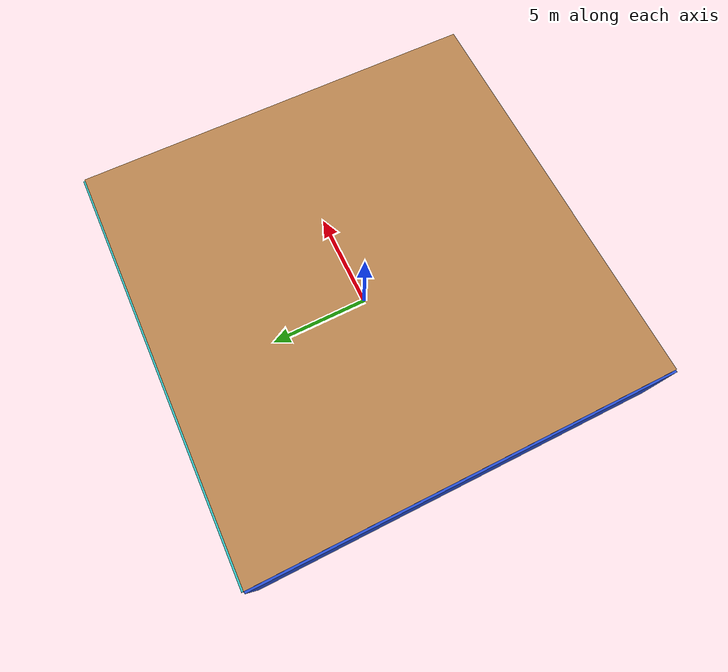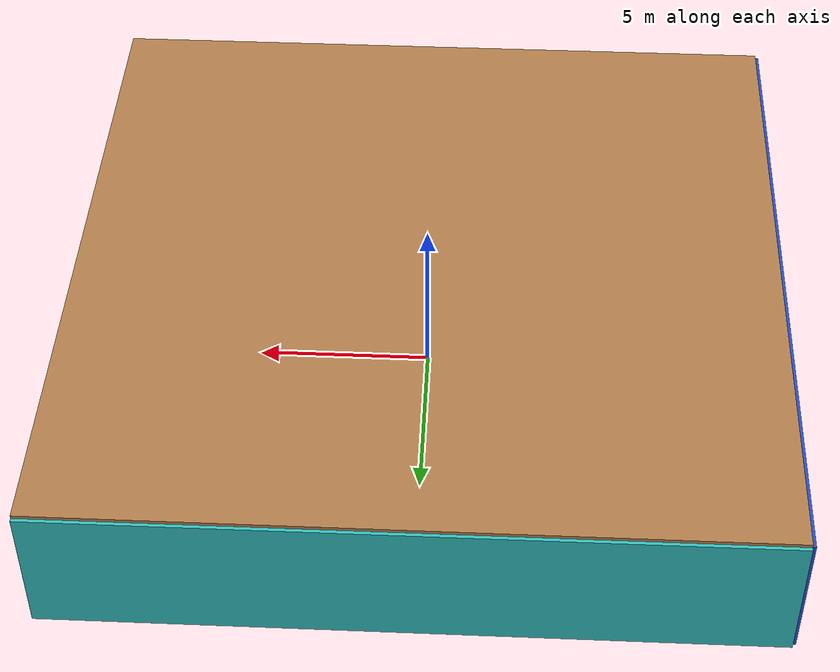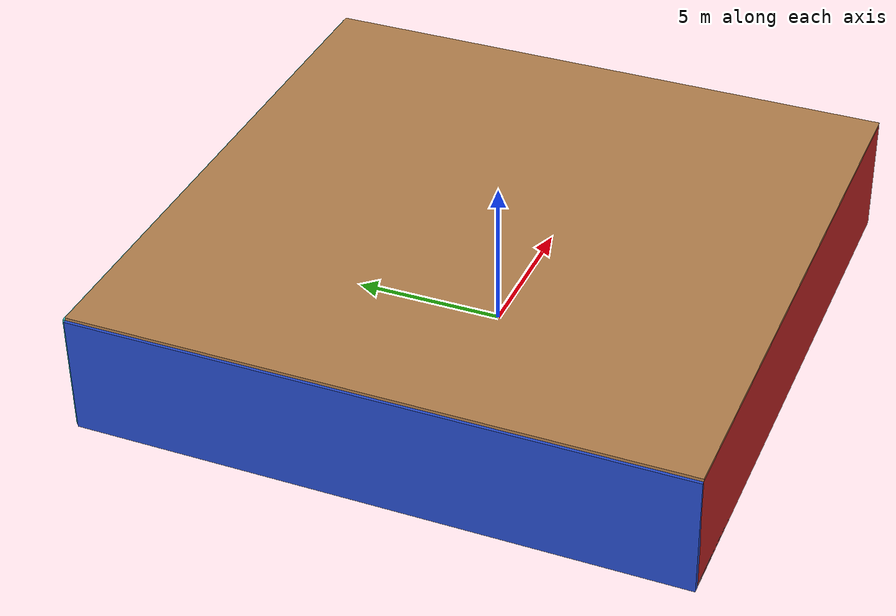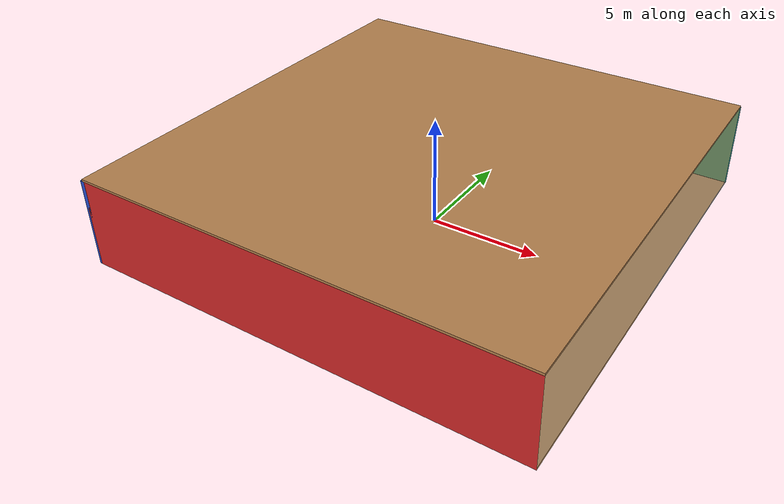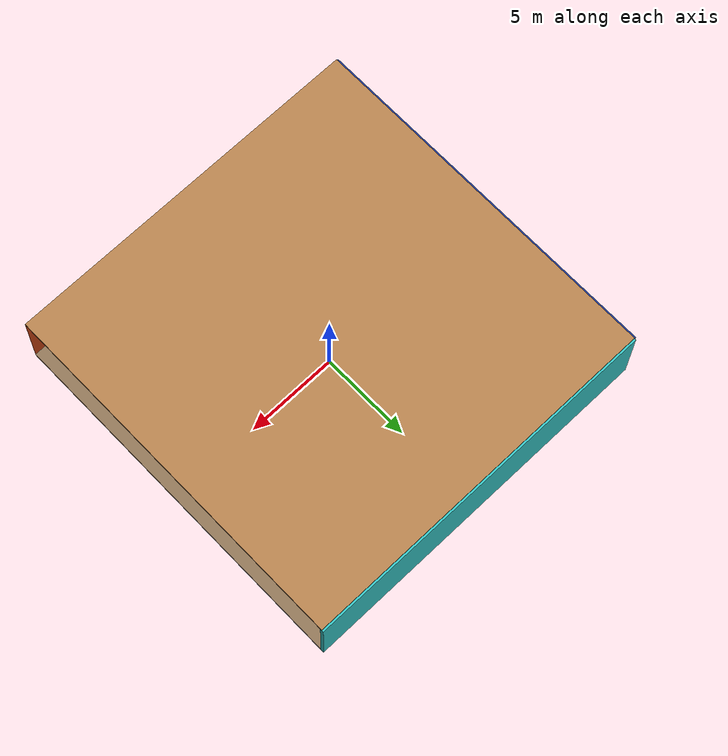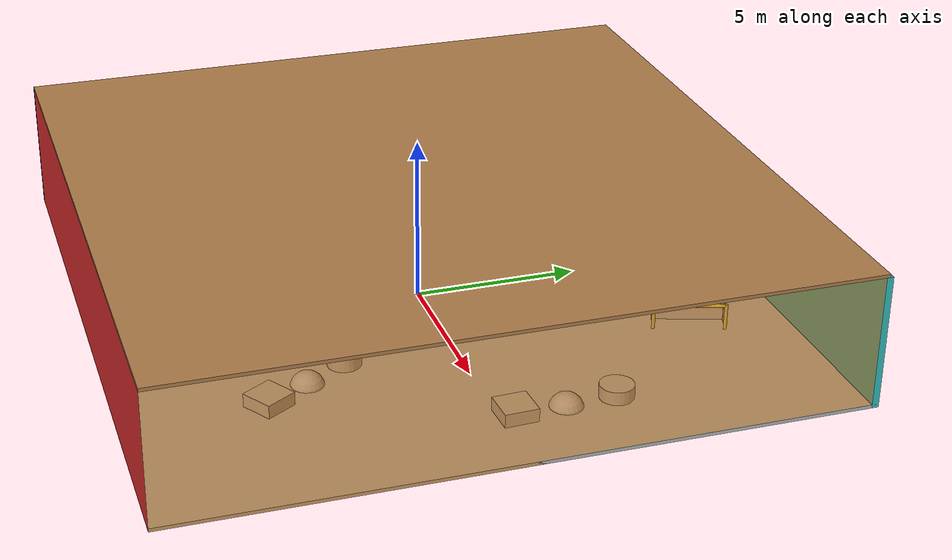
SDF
<sdf version="1.4">
 <world name="default">
  <physics type="ode">
   <max_step_size>0.001</max_step_size>
   <real_time_factor>1</real_time_factor>
   <real_time_update_rate>1000</real_time_update_rate>
   <gravity>0 0 -9.8</gravity>
  </physics>
  <scene><ambient>0.4 0.4 0.4 1</ambient><background>0.7 0.7 0.7 1</background><shadows>1</shadows></scene>
  <model name="Surrounding">
   <static>1</static>
   <link name="Ceiling">
    <collision name="Ceiling_Collision"><geometry><box><size>20 20 0.1</size></box></geometry></collision>
    <visual name="Ceiling_Visual">
     <geometry><box><size>20 20 0.1</size></box></geometry>
     <material>
      <script><uri>file://media/materials/scripts/gazebo.material</uri><name>Gazebo/WoodPallet</name></script>
     </material>
    </visual>
    <pose>0 0 4.05 0 0 0</pose>
   </link>
   <link name="Wall_South">
    <collision name="Wall_South_Collision">
     <geometry><box><size>20 0 4</size></box></geometry>
     <pose>0 0 2 0 -0 0</pose>
    </collision>
    <visual name="Wall_South_Visual">
     <pose>0 0 2 0 -0 0</pose>
     <geometry><box><size>20 0 4</size></box></geometry>
     <material>
      <script><uri>file://media/materials/scripts/gazebo.material</uri><name>Gazebo/RedBright</name></script>
     </material>
    </visual>
    <velocity_decay><linear>0</linear><angular>0</angular></velocity_decay>
    <pose>0 -10 0 0 -0 0</pose>
   </link>
   <link name="Wall_East">
    <collision name="Wall_21_Collision">
     <geometry><box><size>20 0 4</size></box></geometry>
     <pose>0 0 2 0 -0 0</pose>
    </collision>
    <visual name="Wall_21_Visual">
     <pose>0 0 2 0 -0 0</pose>
     <geometry><box><size>20 0 4</size></box></geometry>
     <material>
      <script>
       <uri>file://media/materials/scripts/gazebo.material</uri>
       <name>Gazebo/OrangeTransparent</name>
      </script>
     </material>
    </visual>
    <velocity_decay><linear>0</linear><angular>0</angular></velocity_decay>
    <pose>10 0 0 0 -0 1.5708</pose>
   </link>
   <link name="Wall_North">
    <collision name="Wall_22_Collision">
     <geometry><box><size>20 0.2 4</size></box></geometry>
     <pose>0 0 2 0 -0 0</pose>
    </collision>
    <visual name="Wall_22_Visual">
     <pose>0 0 2 0 -0 0</pose>
     <geometry><box><size>20 0.2 4</size></box></geometry>
     <material>
      <script><uri>file://media/materials/scripts/gazebo.material</uri><name>Gazebo/TurquoiseGlow</name></script>
     </material>
    </visual>
    <velocity_decay><linear>0</linear><angular>0</angular></velocity_decay>
    <pose>0 10 0 0 -0 0</pose>
   </link>
   <link name="Wall_West">
    <collision name="Wall_23_Collision">
     <geometry><box><size>20 0.2 4</size></box></geometry>
     <pose>0 0 2 0 -0 0</pose>
    </collision>
    <visual name="Wall_23_Visual">
     <pose>0 0 2 0 -0 0</pose>
     <geometry><box><size>20 0.2 4</size></box></geometry>
     <material>
      <script><uri>file://media/materials/scripts/gazebo.material</uri><name>Gazebo/Blue</name></script>
     </material>
    </visual>
    <velocity_decay><linear>0</linear><angular>0</angular></velocity_decay>
    <pose>-10 0 0 0 0 -1.5708</pose>
   </link>
   <link name="Ground_link">
    <collision name="collision">
     <pose>0 0 .05 0 -0 0</pose>
     <geometry><box><size>20 20 0.1</size></box></geometry>
    </collision>
    <visual name="visual">
     <pose>0 0 .05 0 -0 0</pose>
     <geometry><box><size>20 20 0.1</size></box></geometry>
     <material>
      <script><uri>file://media/materials/scripts/gazebo.material</uri><name>Gazebo/JointAnchor</name></script>
     </material>
    </visual>
   </link>
   <static>1</static>
  </model>
  <spherical_coordinates>
   <surface_model>EARTH_WGS84</surface_model>
   <latitude_deg>0</latitude_deg>
   <longitude_deg>0</longitude_deg>
   <elevation>0</elevation>
   <heading_deg>0</heading_deg>
  </spherical_coordinates>
  <light name="lightball_0" type="diffuse">
   <diffuse>0.8 0.8 0.8 1</diffuse>
   <specular>0.2 0.2 0.2 1</specular>
   <attenuation>
    <range>100</range>
    <constant>0.7</constant>
    <linear>0.01</linear>
    <quadratic>0.001</quadratic>
   </attenuation>
   <direction>-0.5 0.1 -0.9</direction>
   <pose>1.98672306537 -4.59969249234 2.91218750274 0 0 0</pose>
  </light>
  <light name="lightball_1" type="diffuse">
   <diffuse>0.8 0.8 0.8 1</diffuse>
   <specular>0.2 0.2 0.2 1</specular>
   <attenuation>
    <range>100</range>
    <constant>0.7</constant>
    <linear>0.01</linear>
    <quadratic>0.001</quadratic>
   </attenuation>
   <direction>-0.5 0.1 -0.9</direction>
   <pose>1.17638211619 8.2747635593 1.55421819625 0 0 0</pose>
  </light>
  <light name="lightball_2" type="diffuse">
   <diffuse>0.8 0.8 0.8 1</diffuse>
   <specular>0.2 0.2 0.2 1</specular>
   <attenuation>
    <range>100</range>
    <constant>0.7</constant>
    <linear>0.01</linear>
    <quadratic>0.001</quadratic>
   </attenuation>
   <direction>-0.5 0.1 -0.9</direction>
   <pose>8.68612035454 4.55062354553 1.42721497629 0 0 0</pose>
  </light>
  <light name="lightball_3" type="diffuse">
   <diffuse>0.8 0.8 0.8 1</diffuse>
   <specular>0.2 0.2 0.2 1</specular>
   <attenuation>
    <range>100</range>
    <constant>0.7</constant>
    <linear>0.01</linear>
    <quadratic>0.001</quadratic>
   </attenuation>
   <direction>-0.5 0.1 -0.9</direction>
   <pose>3.91777496229 -1.13606026208 1.53827926424 0 0 0</pose>
  </light>
  <light name="lightball_4" type="diffuse">
   <diffuse>0.8 0.8 0.8 1</diffuse>
   <specular>0.2 0.2 0.2 1</specular>
   <attenuation>
    <range>100</range>
    <constant>0.7</constant>
    <linear>0.01</linear>
    <quadratic>0.001</quadratic>
   </attenuation>
   <direction>-0.5 0.1 -0.9</direction>
   <pose>1.56902780016 -5.81654971903 0.798111193712 0 0 0</pose>
  </light>
  <light name="lightball_5" type="diffuse">
   <diffuse>0.8 0.8 0.8 1</diffuse>
   <specular>0.2 0.2 0.2 1</specular>
   <attenuation>
    <range>100</range>
    <constant>0.7</constant>
    <linear>0.01</linear>
    <quadratic>0.001</quadratic>
   </attenuation>
   <direction>-0.5 0.1 -0.9</direction>
   <pose>-9.94200383941 8.32546654819 0.710471607143 0 0 0</pose>
  </light>
  <light name="lightball_6" type="diffuse">
   <diffuse>0.8 0.8 0.8 1</diffuse>
   <specular>0.2 0.2 0.2 1</specular>
   <attenuation>
    <range>100</range>
    <constant>0.7</constant>
    <linear>0.01</linear>
    <quadratic>0.001</quadratic>
   </attenuation>
   <direction>-0.5 0.1 -0.9</direction>
   <pose>5.07432742051 6.52827583312 1.76105121012 0 0 0</pose>
  </light>
  <light name="lightball_7" type="diffuse">
   <diffuse>0.8 0.8 0.8 1</diffuse>
   <specular>0.2 0.2 0.2 1</specular>
   <attenuation>
    <range>100</range>
    <constant>0.7</constant>
    <linear>0.01</linear>
    <quadratic>0.001</quadratic>
   </attenuation>
   <direction>-0.5 0.1 -0.9</direction>
   <pose>-3.88525624856 3.03704577085 2.22488560086 0 0 0</pose>
  </light>
  <include><uri>model://cabinet</uri><pose>-7.57276128871 1.57999842067 0 0 0 2.89867386082</pose></include>
  <include><uri>model://cabinet</uri><pose>-3.88099498132 -3.82107355549 0 0 0 0.160797870604</pose></include>
  <include><uri>model://table</uri><pose>-1.61401788896 -7.93708945448 0 0 0 1.01856313065</pose></include>
  <include><uri>model://cabinet</uri><pose>0.857495692396 -7.572522523 0 0 0 2.06266865061</pose></include>
  <include>
   <uri>model://textured_shapes</uri>
   <pose>4.40451337716 -4.55946406239 0 0 0 0.55748909103</pose>
  </include>
  <include>
   <uri>model://robocup_3Dsim_goal</uri>
   <pose>4.56696276559 6.89938383587 0 0 0 2.82056400898</pose>
  </include>
  <include>
   <uri>model://textured_shapes</uri>
   <pose>7.59431497047 1.9053315685 0 0 0 0.0447779277748</pose>
  </include>
 </world>
</sdf>

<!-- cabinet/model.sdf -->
<sdf version="1.5">
  <model name="cabinet">
    <static>true</static>
    <link name="cabinet_bottom_plate">
      <inertial>
        <pose>0 0 -1 0 0 0</pose>
        <inertia>
          <ixx>2.050000</ixx>
          <ixy>0</ixy>
          <ixz>0</ixz>
          <iyy>2.050000</iyy>
          <iyz>0</iyz>
          <izz>2.050000</izz>
        </inertia>
        <mass>25.000000</mass>
      </inertial>
      <collision name="cabinet_bottom_plate_geom">
        <pose>0 0 0.010000 0 0 0</pose>
        <geometry>
          <box>
            <size>0.450000 0.450000 0.020000</size>
          </box>
        </geometry>
      </collision>
      <visual name="cabinet_bottom_plate_geom_visual">
        <pose>0 0 0.010000 0 0 0</pose>
        <geometry>
          <box>
            <size>0.450000 0.450000 0.020000</size>
          </box>
        </geometry>
        <material>
          <script>
            <uri>model://media/materials/scripts/gazebo.material</uri>
            <name>Gazebo/Wood</name>
          </script>
        </material>
      </visual>
      <collision name="cabinet_bottom_plate_geom_cabinet_back_plate">
        <pose>0.235000 0 0.510000 0 0 0</pose>
        <geometry>
          <box>
            <size>0.020000 0.450000 1.020000</size>
          </box>
        </geometry>
      </collision>
      <visual name="cabinet_bottom_plate_geom_cabinet_back_plate_visual">
        <pose>0.235000 0 0.510000 0 0 0</pose>
        <geometry>
          <box>
            <size>0.020000 0.450000 1.020000</size>
          </box>
        </geometry>
        <material>
          <script>
            <uri>model://media/materials/scripts/gazebo.material</uri>
            <name>Gazebo/Wood</name>
          </script>
        </material>
      </visual>
      <collision name="cabinet_bottom_plate_geom_cabinet_left_plate">
        <pose>0 0.235000 0.510000 0 0 0</pose>
        <geometry>
          <box>
            <size>0.450000 0.020000 1.020000</size>
          </box>
        </geometry>
      </collision>
      <visual name="cabinet_bottom_plate_geom_cabinet_left_plate_visual">
        <pose>0 0.235000 0.510000 0 0 0</pose>
        <geometry>
          <box>
            <size>0.450000 0.020000 1.020000</size>
          </box>
        </geometry>
        <material>
          <script>
            <uri>model://media/materials/scripts/gazebo.material</uri>
            <name>Gazebo/Wood</name>
          </script>
        </material>
      </visual>
      <collision name="cabinet_bottom_plate_geom_cabinet_middle_plate">
        <pose>0 0 0.510000 0 0 0</pose>
        <geometry>
          <box>
            <size>0.450000 0.450000 0.020000</size>
          </box>
        </geometry>
      </collision>
      <visual name="cabinet_bottom_plate_geom_cabinet_middle_plate_visual">
        <pose>0 0 0.510000 0 0 0</pose>
        <geometry>
          <box>
            <size>0.450000 0.450000 0.020000</size>
          </box>
        </geometry>
        <material>
          <script>
            <uri>model://media/materials/scripts/gazebo.material</uri>
            <name>Gazebo/Wood</name>
          </script>
        </material>
      </visual>
      <collision name="cabinet_bottom_plate_geom_cabinet_right_plate">
        <pose>0 -0.235000 0.510000 0 0 0</pose>
        <geometry>
          <box>
            <size>0.450000 0.020000 1.020000</size>
          </box>
        </geometry>
      </collision>
      <visual name="cabinet_bottom_plate_geom_cabinet_right_plate_visual">
        <pose>0 -0.235000 0.510000 0 0 0</pose>
        <geometry>
          <box>
            <size>0.450000 0.020000 1.020000</size>
          </box>
        </geometry>
        <material>
          <script>
            <uri>model://media/materials/scripts/gazebo.material</uri>
            <name>Gazebo/Wood</name>
          </script>
        </material>
      </visual>
      <collision name="cabinet_bottom_plate_geom_cabinet_top_plate">
        <pose>0 0 1.010000 0 0 0</pose>
        <geometry>
          <box>
            <size>0.450000 0.450000 0.020000</size>
          </box>
        </geometry>
      </collision>
      <visual name="cabinet_bottom_plate_geom_cabinet_top_plate_visual">
        <pose>0 0 1.010000 0 0 0</pose>
        <geometry>
          <box>
            <size>0.450000 0.450000 0.020000</size>
          </box>
        </geometry>
        <material>
          <script>
            <uri>model://media/materials/scripts/gazebo.material</uri>
            <name>Gazebo/Wood</name>
          </script>
        </material>
      </visual>
    </link>
  </model>
</sdf>

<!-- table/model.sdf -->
<sdf version="1.5">
  <model name="table">
    <static>true</static>
    <link name="link">
      <collision name="surface">
        <pose>0 0 1.0 0 0 0</pose>
        <geometry>
          <box>
            <size>1.5 0.8 0.03</size>
          </box>
        </geometry>
        <surface>
          <friction>
            <ode>
              <mu>0.6</mu>
              <mu2>0.6</mu2>
            </ode>
          </friction>
        </surface>
      </collision>
      <visual name="visual1">
        <pose>0 0 1.0 0 0 0</pose>
        <geometry>
          <box>
            <size>1.5 0.8 0.03</size>
          </box>
        </geometry>
        <material>
          <script>
            <uri>model://media/materials/scripts/gazebo.material</uri>
            <name>Gazebo/Wood</name>
          </script>
        </material>
      </visual>
      <collision name="front_left_leg">
        <pose>0.68 0.38 0.5 0 0 0</pose>
        <geometry>
          <cylinder>
            <radius>0.02</radius>
            <length>1.0</length>
          </cylinder>
        </geometry>
      </collision>
      <visual name="front_left_leg">
        <pose>0.68 0.38 0.5 0 0 0</pose>
        <geometry>
          <cylinder>
            <radius>0.02</radius>
            <length>1.0</length>
          </cylinder>
        </geometry>
        <material>
          <script>
            <uri>model://media/materials/scripts/gazebo.material</uri>
            <name>Gazebo/Grey</name>
          </script>
        </material>
      </visual>
      <collision name="front_right_leg">
        <pose>0.68 -0.38 0.5 0 0 0</pose>
        <geometry>
          <cylinder>
            <radius>0.02</radius>
            <length>1.0</length>
          </cylinder>
        </geometry>
      </collision>
      <visual name="front_right_leg">
        <pose>0.68 -0.38 0.5 0 0 0</pose>
        <geometry>
          <cylinder>
            <radius>0.02</radius>
            <length>1.0</length>
          </cylinder>
        </geometry>
        <material>
          <script>
            <uri>model://media/materials/scripts/gazebo.material</uri>
            <name>Gazebo/Grey</name>
          </script>
        </material>
      </visual>
      <collision name="back_right_leg">
        <pose>-0.68 -0.38 0.5 0 0 0</pose>
        <geometry>
          <cylinder>
            <radius>0.02</radius>
            <length>1.0</length>
          </cylinder>
        </geometry>
      </collision>
      <visual name="back_right_leg">
        <pose>-0.68 -0.38 0.5 0 0 0</pose>
        <geometry>
          <cylinder>
            <radius>0.02</radius>
            <length>1.0</length>
          </cylinder>
        </geometry>
        <material>
          <script>
            <uri>model://media/materials/scripts/gazebo.material</uri>
            <name>Gazebo/Grey</name>
          </script>
        </material>
      </visual>
      <collision name="back_left_leg">
        <pose>-0.68 0.38 0.5 0 0 0</pose>
        <geometry>
          <cylinder>
            <radius>0.02</radius>
            <length>1.0</length>
          </cylinder>
        </geometry>
      </collision>
      <visual name="back_left_leg">
        <pose>-0.68 0.38 0.5 0 0 0</pose>
        <geometry>
          <cylinder>
            <radius>0.02</radius>
            <length>1.0</length>
          </cylinder>
        </geometry>
        <material>
          <script>
            <uri>model://media/materials/scripts/gazebo.material</uri>
            <name>Gazebo/Grey</name>
          </script>
        </material>
      </visual>
    </link>
  </model>
</sdf>

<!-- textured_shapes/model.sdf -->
<sdf version="1.6">
  <model name="textured_shapes">
    <pose>0 0 0.5 0 0 0</pose>
    <link name="box">
      <pose>0 -1.5 0 0 0 0</pose>
      <collision name="collision">
        <geometry>
          <box>
            <size>1 1 1</size>
          </box>
        </geometry>
      </collision>
      <visual name="visual">
        <geometry>
          <box>
            <size>1 1 1</size>
          </box>
        </geometry>
        <material>
          <script>
            <uri>model://../model_source/models/textured_shapes/materials/scripts</uri>
            <uri>model://../model_source/models/textured_shapes/materials/textures</uri>
            <name>TexturedShape/Squares</name>
          </script>
        </material>
      </visual>
    </link>
    <link name="sphere">
      <collision name="collision">
        <geometry>
          <sphere>
            <radius>0.5</radius>
          </sphere>
        </geometry>
      </collision>
      <visual name="visual">
        <geometry>
          <sphere>
            <radius>0.5</radius>
          </sphere>
        </geometry>
        <material>
          <script>
            <uri>model://../model_source/models/textured_shapes/materials/scripts</uri>
            <uri>model://../model_source/models/textured_shapes/materials/textures</uri>
            <name>TexturedShape/Squares</name>
          </script>
        </material>
      </visual>
    </link>
    <link name="cylinder">
      <pose>0 1.5 0 0 0 0</pose>
      <collision name="collision">
        <geometry>
          <cylinder>
            <radius>0.5</radius>
            <length>1</length>
          </cylinder>
        </geometry>
      </collision>
      <visual name="visual">
        <geometry>
          <cylinder>
            <radius>0.5</radius>
            <length>1</length>
          </cylinder>
        </geometry>
        <material>
          <script>
            <uri>model://../model_source/models/textured_shapes/materials/scripts</uri>
            <uri>model://../model_source/models/textured_shapes/materials/textures</uri>
            <name>TexturedShape/Squares</name>
          </script>
        </material>
      </visual>
    </link>
  </model>
</sdf>

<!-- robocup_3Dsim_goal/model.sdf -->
<sdf version="1.5">
  <model name="robocup_3d_goal">
    <static>true</static>
    <link name="left_post">
      <pose>0 1.05 0.45 0 0 0</pose>
      <collision name="collision">
        <geometry>
          <cylinder>
            <radius>0.05</radius>
            <length>0.9</length>
          </cylinder>
        </geometry>
      </collision>
      <visual name="visual">
        <geometry>
          <cylinder>
            <radius>0.05</radius>
            <length>0.9</length>
          </cylinder>
        </geometry>
        <material>
          <script>
            <uri>file://media/materials/scripts/gazebo.material</uri>
            <name>Gazebo/ZincYellow</name>
          </script>
        </material>
      </visual>
    </link>
    <link name="left_support_horiz_lower">
      <pose>0.30 1.05 0.01 0 0 0</pose>
      <collision name="collision">
        <geometry>
          <box>
            <size>0.50 0.02 0.02</size>
          </box>
        </geometry>
      </collision>
      <visual name="visual">
        <geometry>
          <box>
            <size>0.50 0.02 0.02</size>
          </box>
        </geometry>
        <material>
          <script>
            <uri>file://media/materials/scripts/gazebo.material</uri>
            <name>Gazebo/White</name>
          </script>
        </material>
      </visual>
    </link>
    <link name="left_support_horiz_upper">
      <pose>0.30 1.05 0.79 0 0 0</pose>
      <collision name="collision">
        <geometry>
          <box>
            <size>0.50 0.02 0.02</size>
          </box>
        </geometry>
      </collision>
      <visual name="visual">
        <geometry>
          <box>
            <size>0.50 0.02 0.02</size>
          </box>
        </geometry>
        <material>
          <script>
            <uri>file://media/materials/scripts/gazebo.material</uri>
            <name>Gazebo/White</name>
          </script>
        </material>
      </visual>
    </link>
    <link name="left_support_vertical">
      <pose>0.56 1.05 0.4 0 1.5708 0</pose>
      <collision name="collision">
        <geometry>
          <box>
            <size>0.80 0.02 0.02</size>
          </box>
        </geometry>
      </collision>
      <visual name="visual">
        <geometry>
          <box>
            <size>0.80 0.02 0.02</size>
          </box>
        </geometry>
        <material>
          <script>
            <uri>file://media/materials/scripts/gazebo.material</uri>
            <name>Gazebo/White</name>
          </script>
        </material>
      </visual>
    </link>
    <link name="right_support_horiz_lower">
      <pose>0.30 -1.05 0.01 0 0 0</pose>
      <collision name="collision">
        <geometry>
          <box>
            <size>0.50 0.02 0.02</size>
          </box>
        </geometry>
      </collision>
      <visual name="visual">
        <geometry>
          <box>
            <size>0.50 0.02 0.02</size>
          </box>
        </geometry>
        <material>
          <script>
            <uri>file://media/materials/scripts/gazebo.material</uri>
            <name>Gazebo/White</name>
          </script>
        </material>
      </visual>
    </link>
    <link name="right_support_horiz_upper">
      <pose>0.30 -1.05 0.79 0 0 0</pose>
      <collision name="collision">
        <geometry>
          <box>
            <size>0.50 0.02 0.02</size>
          </box>
        </geometry>
      </collision>
      <visual name="visual">
        <geometry>
          <box>
            <size>0.50 0.02 0.02</size>
          </box>
        </geometry>
        <material>
          <script>
            <uri>file://media/materials/scripts/gazebo.material</uri>
            <name>Gazebo/White</name>
          </script>
        </material>
      </visual>
    </link>
    <link name="right_support_vertical">
      <pose>0.56 -1.05 0.4 0 1.5708 0</pose>
      <collision name="collision">
        <geometry>
          <box>
            <size>0.80 0.02 0.02</size>
          </box>
        </geometry>
      </collision>
      <visual name="visual">
        <geometry>
          <box>
            <size>0.80 0.02 0.02</size>
          </box>
        </geometry>
        <material>
          <script>
            <uri>file://media/materials/scripts/gazebo.material</uri>
            <name>Gazebo/White</name>
          </script>
        </material>
      </visual>
    </link>
    <link name="center_support_horiz_lower">
      <pose>0.56 0 0.01 0 1.5708 0</pose>
      <collision name="collision">
        <geometry>
          <box>
            <size>0.02 2.08 0.02</size>
          </box>
        </geometry>
      </collision>
      <visual name="visual">
        <geometry>
          <box>
            <size>0.02 2.08 0.02</size>
          </box>
        </geometry>
        <material>
          <script>
            <uri>file://media/materials/scripts/gazebo.material</uri>
            <name>Gazebo/White</name>
          </script>
        </material>
      </visual>
    </link>
    <link name="center_support_horiz_upper">
      <pose>0.56 0 0.79 0 1.5708 0</pose>
      <collision name="collision">
        <geometry>
          <box>
            <size>0.02 2.08 0.02</size>
          </box>
        </geometry>
      </collision>
      <visual name="visual">
        <geometry>
          <box>
            <size>0.02 2.08 0.02</size>
          </box>
        </geometry>
        <material>
          <script>
            <uri>file://media/materials/scripts/gazebo.material</uri>
            <name>Gazebo/White</name>
          </script>
        </material>
      </visual>
    </link>
    <link name="right_post">
      <pose>0 -1.05 0.45 0 0 0</pose>
      <collision name="collision">
        <geometry>
          <cylinder>
            <radius>0.05</radius>
            <length>0.9</length>
          </cylinder>
        </geometry>
      </collision>
      <visual name="visual">
        <geometry>
          <cylinder>
            <radius>0.05</radius>
            <length>0.9</length>
          </cylinder>
        </geometry>
        <material>
          <script>
            <uri>file://media/materials/scripts/gazebo.material</uri>
            <name>Gazebo/ZincYellow</name>
          </script>
        </material>
      </visual>
    </link>
    <link name="crossbar">
      <pose>0 0 0.85 1.57 1.57 0</pose>
      <collision name="collision">
        <geometry>
          <cylinder>
            <radius>0.05</radius>
            <length>2.0</length>
          </cylinder>
        </geometry>
      </collision>
      <visual name="visual">
        <geometry>
          <cylinder>
            <radius>0.05</radius>
            <length>2.0</length>
          </cylinder>
        </geometry>
        <material>
          <script>
            <uri>file://media/materials/scripts/gazebo.material</uri>
            <name>Gazebo/ZincYellow</name>
          </script>
        </material>
      </visual>
    </link>
    <link name="center_net">
      <pose>0.56 0 0.40 0 0 0</pose>
      <collision name="collision">
        <geometry>
          <box>
            <size>0.01 2.1 0.80</size>
          </box>
        </geometry>
      </collision>
      <visual name="visual">
        <geometry>
          <box>
            <size>0.01 2.1 0.80</size>
          </box>
        </geometry>
        <material>
          <script>
            <uri>model://../model_source/models/robocup09_spl_field/materials/scripts/</uri>
            <uri>model://../model_source/models/robocup09_spl_field/materials/textures/</uri>
            <name>RoboCup/Net</name>
          </script>
        </material>
      </visual>
    </link>
    <link name="left_net">
      <pose>0.30 1.05 0.40 0 0 0</pose>
      <collision name="collision">
        <geometry>
          <box>
            <size>0.50 0.01 0.76</size>
          </box>
        </geometry>
      </collision>
      <visual name="visual">
        <geometry>
          <box>
            <size>0.50 0.01 0.76</size>
          </box>
        </geometry>
        <material>
          <script>
            <uri>model://../model_source/models/robocup09_spl_field/materials/scripts/</uri>
            <uri>model://../model_source/models/robocup09_spl_field/materials/textures/</uri>
            <name>RoboCup/Net</name>
          </script>
        </material>
      </visual>
    </link>
    <link name="right_net">
      <pose>0.30 -1.05 0.40 0 0 0</pose>
      <collision name="collision">
        <geometry>
          <box>
            <size>0.50 0.01 0.76</size>
          </box>
        </geometry>
      </collision>
      <visual name="visual">
        <geometry>
          <box>
            <size>0.50 0.01 0.76</size>
          </box>
        </geometry>
        <material>
          <script>
            <uri>model://../model_source/models/robocup09_spl_field/materials/scripts/</uri>
            <uri>model://../model_source/models/robocup09_spl_field/materials/textures/</uri>
            <name>RoboCup/Net</name>
          </script>
        </material>
      </visual>
    </link>
  </model>
</sdf>
